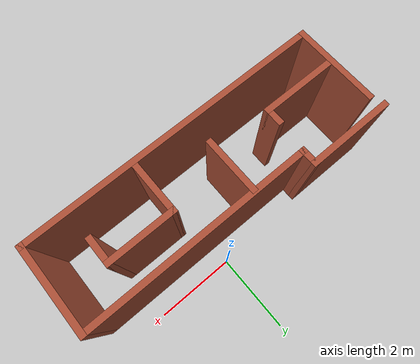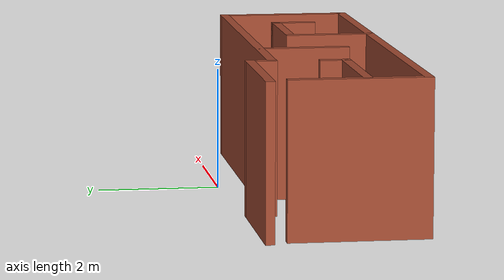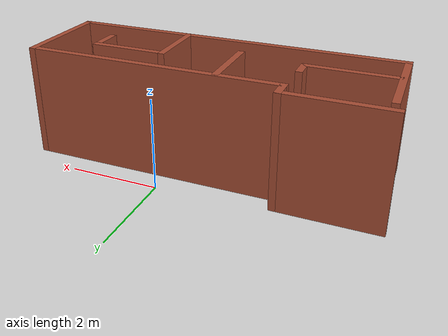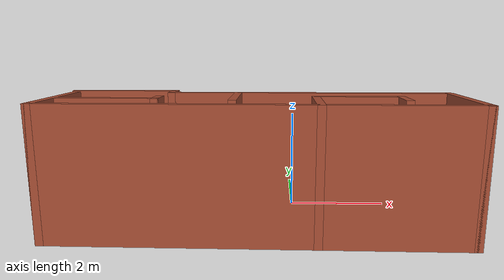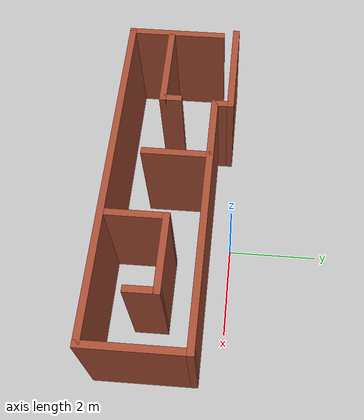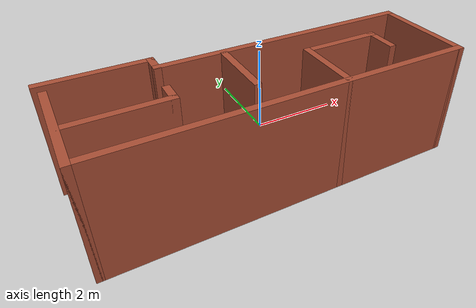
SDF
<?xml version='1.0'?>
<sdf version='1.7'>
  <model name='kbot_house'>
    <pose>-0.73 -1.3575 0 0 -0 0</pose>
    <link name='Wall_0'>
      <collision name='Wall_0_Collision'>
        <geometry>
          <box>
            <size>2.25 0.15 2.5</size>
          </box>
        </geometry>
        <pose>0 0 1.25 0 -0 0</pose>
      </collision>
      <visual name='Wall_0_Visual'>
        <pose>0 0 1.25 0 -0 0</pose>
        <geometry>
          <box>
            <size>2.25 0.15 2.5</size>
          </box>
        </geometry>
        <material>
          <script>
            <uri>file://media/materials/scripts/gazebo.material</uri>
            <name>Gazebo/Bricks</name>
          </script>
          <ambient>1 1 1 1</ambient>
        </material>
        <meta>
          <layer>0</layer>
        </meta>
      </visual>
      <pose>-3.75 -0.2325 0 0 -0 -1.5708</pose>
    </link>
    <link name='Wall_1'>
      <collision name='Wall_1_Collision'>
        <geometry>
          <box>
            <size>7.75 0.15 2.5</size>
          </box>
        </geometry>
        <pose>0 0 1.25 0 -0 0</pose>
      </collision>
      <visual name='Wall_1_Visual'>
        <pose>0 0 1.25 0 -0 0</pose>
        <geometry>
          <box>
            <size>7.75 0.15 2.5</size>
          </box>
        </geometry>
        <material>
          <script>
            <uri>file://media/materials/scripts/gazebo.material</uri>
            <name>Gazebo/Bricks</name>
          </script>
          <ambient>1 1 1 1</ambient>
        </material>
        <meta>
          <layer>0</layer>
        </meta>
      </visual>
      <pose>0.05 -1.2825 0 0 -0 0</pose>
    </link>
    <link name='Wall_10'>
      <collision name='Wall_10_Collision'>
        <geometry>
          <box>
            <size>1.5 0.15 2.5</size>
          </box>
        </geometry>
        <pose>0 0 1.25 0 -0 0</pose>
      </collision>
      <visual name='Wall_10_Visual'>
        <pose>0 0 1.25 0 -0 0</pose>
        <geometry>
          <box>
            <size>1.5 0.15 2.5</size>
          </box>
        </geometry>
        <material>
          <script>
            <uri>file://media/materials/scripts/gazebo.material</uri>
            <name>Gazebo/Bricks</name>
          </script>
          <ambient>1 1 1 1</ambient>
        </material>
        <meta>
          <layer>0</layer>
        </meta>
      </visual>
      <pose>-0.39 0.0925 0 0 -0 -1.5708</pose>
    </link>
    <link name='Wall_12'>
      <collision name='Wall_12_Collision'>
        <geometry>
          <box>
            <size>1.5 0.15 2.5</size>
          </box>
        </geometry>
        <pose>0 0 1.25 0 -0 0</pose>
      </collision>
      <visual name='Wall_12_Visual'>
        <pose>0 0 1.25 0 -0 0</pose>
        <geometry>
          <box>
            <size>1.5 0.15 2.5</size>
          </box>
        </geometry>
        <material>
          <script>
            <uri>file://media/materials/scripts/gazebo.material</uri>
            <name>Gazebo/Bricks</name>
          </script>
          <ambient>1 1 1 1</ambient>
        </material>
        <meta>
          <layer>0</layer>
        </meta>
      </visual>
      <pose>1.13 -0.6075 0 0 -0 1.5708</pose>
    </link>
    <link name='Wall_13'>
      <collision name='Wall_13_Collision'>
        <geometry>
          <box>
            <size>1.75 0.15 2.5</size>
          </box>
        </geometry>
        <pose>0 0 1.25 0 -0 0</pose>
      </collision>
      <visual name='Wall_13_Visual'>
        <pose>0 0 1.25 0 -0 0</pose>
        <geometry>
          <box>
            <size>1.75 0.15 2.5</size>
          </box>
        </geometry>
        <material>
          <script>
            <uri>file://media/materials/scripts/gazebo.material</uri>
            <name>Gazebo/Bricks</name>
          </script>
          <ambient>1 1 1 1</ambient>
        </material>
        <meta>
          <layer>0</layer>
        </meta>
      </visual>
      <pose>1.93 0.0675 0 0 -0 0</pose>
    </link>
    <link name='Wall_14'>
      <collision name='Wall_14_Collision'>
        <geometry>
          <box>
            <size>0.75 0.15 2.5</size>
          </box>
        </geometry>
        <pose>0 0 1.25 0 -0 0</pose>
      </collision>
      <visual name='Wall_14_Visual'>
        <pose>0 0 1.25 0 -0 0</pose>
        <geometry>
          <box>
            <size>0.75 0.15 2.5</size>
          </box>
        </geometry>
        <material>
          <script>
            <uri>file://media/materials/scripts/gazebo.material</uri>
            <name>Gazebo/Bricks</name>
          </script>
          <ambient>1 1 1 1</ambient>
        </material>
        <meta>
          <layer>0</layer>
        </meta>
      </visual>
      <pose>2.73 -0.2325 0 0 -0 -1.5708</pose>
    </link>
    <link name='Wall_2'>
      <collision name='Wall_2_Collision'>
        <geometry>
          <box>
            <size>2.25 0.15 2.5</size>
          </box>
        </geometry>
        <pose>0 0 1.25 0 -0 0</pose>
      </collision>
      <visual name='Wall_2_Visual'>
        <pose>0 0 1.25 0 -0 0</pose>
        <geometry>
          <box>
            <size>2.25 0.15 2.5</size>
          </box>
        </geometry>
        <material>
          <script>
            <uri>file://media/materials/scripts/gazebo.material</uri>
            <name>Gazebo/Bricks</name>
          </script>
          <ambient>1 1 1 1</ambient>
        </material>
        <meta>
          <layer>0</layer>
        </meta>
      </visual>
      <pose>3.85 -0.2325 0 0 -0 1.5708</pose>
    </link>
    <link name='Wall_3'>
      <collision name='Wall_3_Collision'>
        <geometry>
          <box>
            <size>5.75 0.15 2.5</size>
          </box>
        </geometry>
        <pose>0 0 1.25 0 -0 0</pose>
      </collision>
      <visual name='Wall_3_Visual'>
        <pose>0 0 1.25 0 -0 0</pose>
        <geometry>
          <box>
            <size>5.75 0.15 2.5</size>
          </box>
        </geometry>
        <material>
          <script>
            <uri>file://media/materials/scripts/gazebo.material</uri>
            <name>Gazebo/Bricks</name>
          </script>
          <ambient>1 1 1 1</ambient>
        </material>
        <meta>
          <layer>0</layer>
        </meta>
      </visual>
      <pose>1.05 0.8175 0 0 -0 3.14159</pose>
    </link>
    <link name='Wall_4'>
      <collision name='Wall_4_Collision'>
        <geometry>
          <box>
            <size>0.5 0.15 2.5</size>
          </box>
        </geometry>
        <pose>0 0 1.25 0 -0 0</pose>
      </collision>
      <visual name='Wall_4_Visual'>
        <pose>0 0 1.25 0 -0 0</pose>
        <geometry>
          <box>
            <size>0.5 0.15 2.5</size>
          </box>
        </geometry>
        <material>
          <script>
            <uri>file://media/materials/scripts/gazebo.material</uri>
            <name>Gazebo/Bricks</name>
          </script>
          <ambient>1 1 1 1</ambient>
        </material>
        <meta>
          <layer>0</layer>
        </meta>
      </visual>
      <pose>-1.75 0.9925 0 0 -0 1.5708</pose>
    </link>
    <link name='Wall_5'>
      <collision name='Wall_5_Collision'>
        <geometry>
          <box>
            <size>2.25 0.15 2.5</size>
          </box>
        </geometry>
        <pose>0 0 1.25 0 -0 0</pose>
      </collision>
      <visual name='Wall_5_Visual'>
        <pose>0 0 1.25 0 -0 0</pose>
        <geometry>
          <box>
            <size>2.25 0.15 2.5</size>
          </box>
        </geometry>
        <material>
          <script>
            <uri>file://media/materials/scripts/gazebo.material</uri>
            <name>Gazebo/Bricks</name>
          </script>
          <ambient>1 1 1 1</ambient>
        </material>
        <meta>
          <layer>0</layer>
        </meta>
      </visual>
      <pose>-2.8 1.1675 0 0 -0 3.14159</pose>
    </link>
    <link name='Wall_7'>
      <collision name='Wall_7_Collision'>
        <geometry>
          <box>
            <size>2 0.15 2.5</size>
          </box>
        </geometry>
        <pose>0 0 1.25 0 -0 0</pose>
      </collision>
      <visual name='Wall_7_Visual'>
        <pose>0 0 1.25 0 -0 0</pose>
        <geometry>
          <box>
            <size>2 0.15 2.5</size>
          </box>
        </geometry>
        <material>
          <script>
            <uri>file://media/materials/scripts/gazebo.material</uri>
            <name>Gazebo/Bricks</name>
          </script>
          <ambient>1 1 1 1</ambient>
        </material>
        <meta>
          <layer>0</layer>
        </meta>
      </visual>
      <pose>-2.755 -0.3525 0 0 -0 0</pose>
    </link>
    <link name='Wall_8'>
      <collision name='Wall_8_Collision'>
        <geometry>
          <box>
            <size>0.5 0.15 2.5</size>
          </box>
        </geometry>
        <pose>0 0 1.25 0 -0 0</pose>
      </collision>
      <visual name='Wall_8_Visual'>
        <pose>0 0 1.25 0 -0 0</pose>
        <geometry>
          <box>
            <size>0.5 0.15 2.5</size>
          </box>
        </geometry>
        <material>
          <script>
            <uri>file://media/materials/scripts/gazebo.material</uri>
            <name>Gazebo/Bricks</name>
          </script>
          <ambient>1 1 1 1</ambient>
        </material>
        <meta>
          <layer>0</layer>
        </meta>
      </visual>
      <pose>-1.83 -0.1775 0 0 -0 1.5708</pose>
    </link>
    <static>1</static>
  </model>
</sdf>
